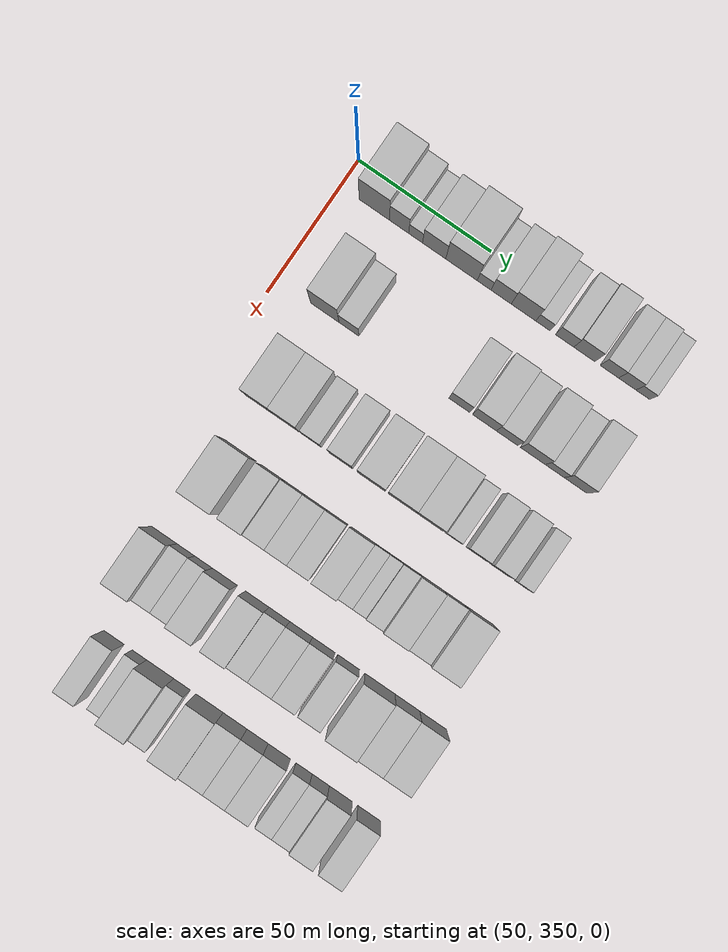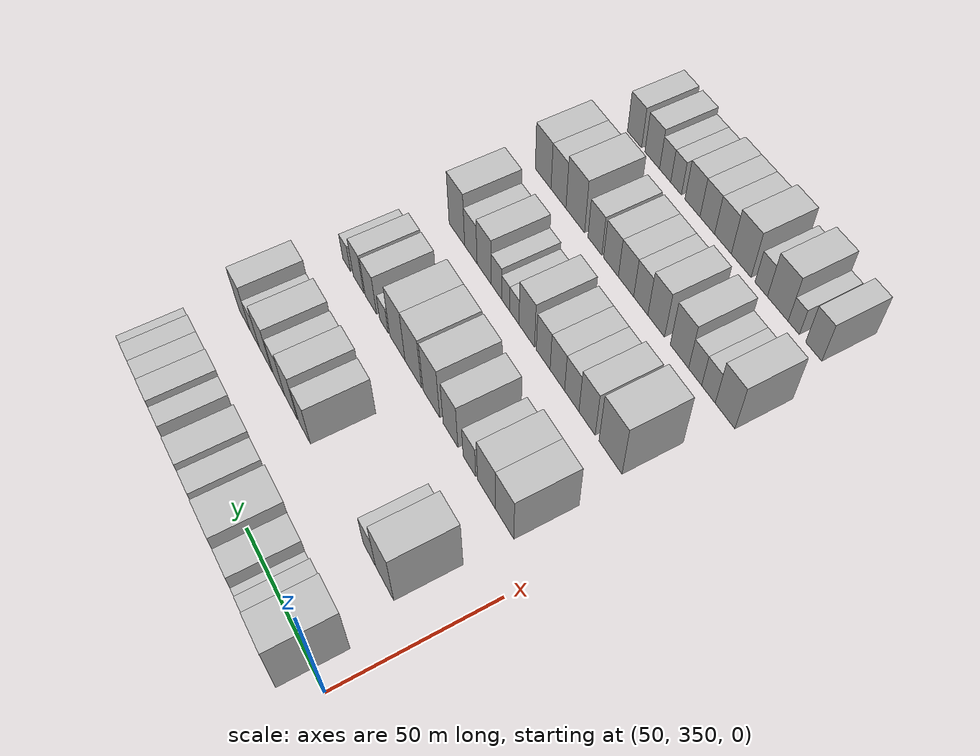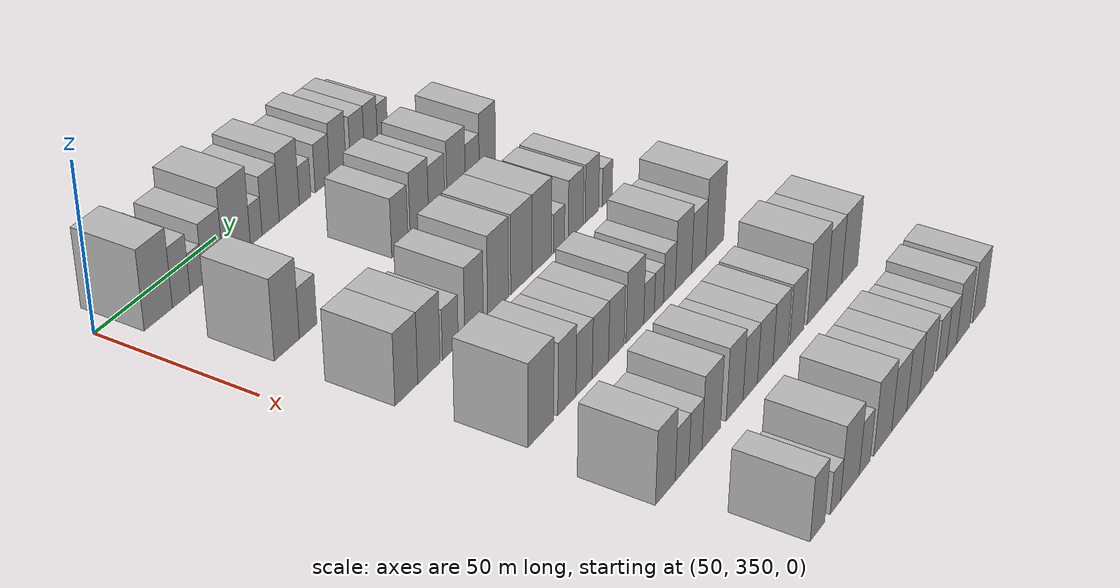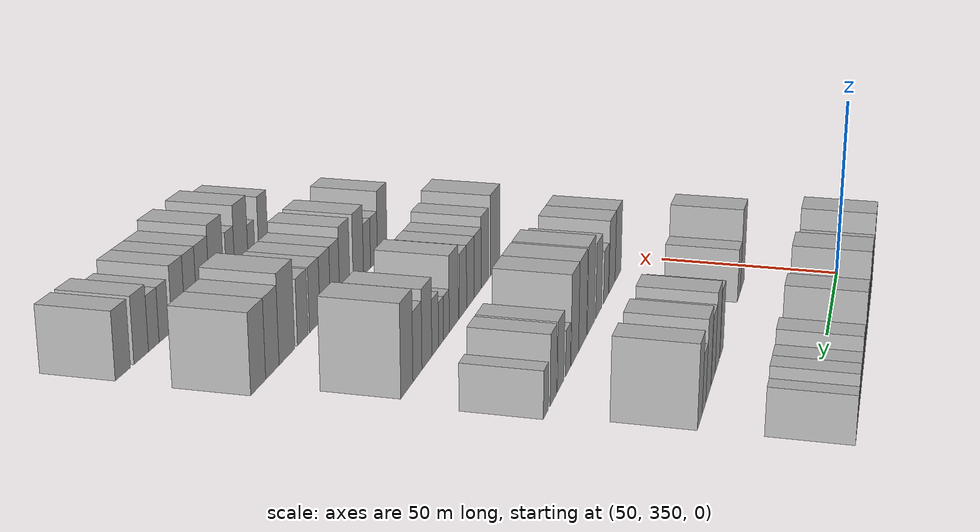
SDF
<sdf version="1.6">
 <world name="default">
  <model name="building_99">
   <static>1</static>
   <pose>50.0000 362.7256 0 0.000000 0.000000 0.000000</pose>
   <link name="link">
    <pose>0 0 12.00 0 0 0</pose>
    <collision name="collision"><geometry><box><size>20.0000 11.3812 24.0000</size></box></geometry></collision>
    <visual name="visual">
     <cast_shadows>0</cast_shadows>
     <geometry><box><size>20.0000 11.3812 24.0000</size></box></geometry>
     <material>
      <script>
       <uri>model://HANNAS_wall/materials/scripts</uri>
       <uri>model://HANNAS_wall/materials/textures</uri>
       <name>vrc/HANNAS_wall</name>
      </script>
     </material>
    </visual>
   </link>
  </model>
  <model name="building_100">
   <static>1</static>
   <pose>50.0000 372.0240 0 0.000000 0.000000 0.000000</pose>
   <link name="link">
    <pose>0 0 9.00 0 0 0</pose>
    <collision name="collision"><geometry><box><size>20.0000 7.2157 18.0000</size></box></geometry></collision>
    <visual name="visual">
     <cast_shadows>0</cast_shadows>
     <geometry><box><size>20.0000 7.2157 18.0000</size></box></geometry>
     <material>
      <script>
       <uri>model://HANNAS_wall/materials/scripts</uri>
       <uri>model://HANNAS_wall/materials/textures</uri>
       <name>vrc/HANNAS_wall</name>
      </script>
     </material>
    </visual>
   </link>
  </model>
  <model name="building_101">
   <static>1</static>
   <pose>50.0000 378.2402 0 0.000000 0.000000 0.000000</pose>
   <link name="link">
    <pose>0 0 6.00 0 0 0</pose>
    <collision name="collision"><geometry><box><size>20.0000 5.2165 12.0000</size></box></geometry></collision>
    <visual name="visual">
     <cast_shadows>0</cast_shadows>
     <geometry><box><size>20.0000 5.2165 12.0000</size></box></geometry>
     <material>
      <script>
       <uri>model://HANNAS_wall/materials/scripts</uri>
       <uri>model://HANNAS_wall/materials/textures</uri>
       <name>vrc/HANNAS_wall</name>
      </script>
     </material>
    </visual>
   </link>
  </model>
  <model name="building_102">
   <static>1</static>
   <pose>50.0000 385.2216 0 0.000000 0.000000 0.000000</pose>
   <link name="link">
    <pose>0 0 9.00 0 0 0</pose>
    <collision name="collision"><geometry><box><size>20.0000 8.7464 18.0000</size></box></geometry></collision>
    <visual name="visual">
     <cast_shadows>0</cast_shadows>
     <geometry><box><size>20.0000 8.7464 18.0000</size></box></geometry>
     <material>
      <script>
       <uri>model://HANNAS_wall/materials/scripts</uri>
       <uri>model://HANNAS_wall/materials/textures</uri>
       <name>vrc/HANNAS_wall</name>
      </script>
     </material>
    </visual>
   </link>
  </model>
  <model name="building_103">
   <static>1</static>
   <pose>50.0000 395.5257 0 0.000000 0.000000 0.000000</pose>
   <link name="link">
    <pose>0 0 12.00 0 0 0</pose>
    <collision name="collision"><geometry><box><size>20.0000 11.8618 24.0000</size></box></geometry></collision>
    <visual name="visual">
     <cast_shadows>0</cast_shadows>
     <geometry><box><size>20.0000 11.8618 24.0000</size></box></geometry>
     <material>
      <script>
       <uri>model://HANNAS_wall/materials/scripts</uri>
       <uri>model://HANNAS_wall/materials/textures</uri>
       <name>vrc/HANNAS_wall</name>
      </script>
     </material>
    </visual>
   </link>
  </model>
  <model name="building_104">
   <static>1</static>
   <pose>50.0000 404.0453 0 0.000000 0.000000 0.000000</pose>
   <link name="link">
    <pose>0 0 6.00 0 0 0</pose>
    <collision name="collision"><geometry><box><size>20.0000 5.1774 12.0000</size></box></geometry></collision>
    <visual name="visual">
     <cast_shadows>0</cast_shadows>
     <geometry><box><size>20.0000 5.1774 12.0000</size></box></geometry>
     <material>
      <script>
       <uri>model://HANNAS_wall/materials/scripts</uri>
       <uri>model://HANNAS_wall/materials/textures</uri>
       <name>vrc/HANNAS_wall</name>
      </script>
     </material>
    </visual>
   </link>
  </model>
  <model name="building_105">
   <static>1</static>
   <pose>50.0000 410.4576 0 0.000000 0.000000 0.000000</pose>
   <link name="link">
    <pose>0 0 9.00 0 0 0</pose>
    <collision name="collision"><geometry><box><size>20.0000 7.6471 18.0000</size></box></geometry></collision>
    <visual name="visual">
     <cast_shadows>0</cast_shadows>
     <geometry><box><size>20.0000 7.6471 18.0000</size></box></geometry>
     <material>
      <script>
       <uri>model://HANNAS_wall/materials/scripts</uri>
       <uri>model://HANNAS_wall/materials/textures</uri>
       <name>vrc/HANNAS_wall</name>
      </script>
     </material>
    </visual>
   </link>
  </model>
  <model name="building_106">
   <static>1</static>
   <pose>50.0000 418.8817 0 0.000000 0.000000 0.000000</pose>
   <link name="link">
    <pose>0 0 10.50 0 0 0</pose>
    <collision name="collision"><geometry><box><size>20.0000 9.2010 21.0000</size></box></geometry></collision>
    <visual name="visual">
     <cast_shadows>0</cast_shadows>
     <geometry><box><size>20.0000 9.2010 21.0000</size></box></geometry>
     <material>
      <script>
       <uri>model://HANNAS_wall/materials/scripts</uri>
       <uri>model://HANNAS_wall/materials/textures</uri>
       <name>vrc/HANNAS_wall</name>
      </script>
     </material>
    </visual>
   </link>
  </model>
  <model name="building_107">
   <static>1</static>
   <pose>50.0000 426.2056 0 0.000000 0.000000 0.000000</pose>
   <link name="link">
    <pose>0 0 6.00 0 0 0</pose>
    <collision name="collision"><geometry><box><size>20.0000 5.4469 12.0000</size></box></geometry></collision>
    <visual name="visual">
     <cast_shadows>0</cast_shadows>
     <geometry><box><size>20.0000 5.4469 12.0000</size></box></geometry>
     <material>
      <script>
       <uri>model://HANNAS_wall/materials/scripts</uri>
       <uri>model://HANNAS_wall/materials/textures</uri>
       <name>vrc/HANNAS_wall</name>
      </script>
     </material>
    </visual>
   </link>
  </model>
  <model name="building_108">
   <static>1</static>
   <pose>50.0000 434.3857 0 0.000000 0.000000 0.000000</pose>
   <link name="link">
    <pose>0 0 7.50 0 0 0</pose>
    <collision name="collision"><geometry><box><size>20.0000 6.9132 15.0000</size></box></geometry></collision>
    <visual name="visual">
     <cast_shadows>0</cast_shadows>
     <geometry><box><size>20.0000 6.9132 15.0000</size></box></geometry>
     <material>
      <script>
       <uri>model://HANNAS_wall/materials/scripts</uri>
       <uri>model://HANNAS_wall/materials/textures</uri>
       <name>vrc/HANNAS_wall</name>
      </script>
     </material>
    </visual>
   </link>
  </model>
  <model name="building_109">
   <static>1</static>
   <pose>50.0000 441.7940 0 0.000000 0.000000 0.000000</pose>
   <link name="link">
    <pose>0 0 9.00 0 0 0</pose>
    <collision name="collision"><geometry><box><size>20.0000 7.9033 18.0000</size></box></geometry></collision>
    <visual name="visual">
     <cast_shadows>0</cast_shadows>
     <geometry><box><size>20.0000 7.9033 18.0000</size></box></geometry>
     <material>
      <script>
       <uri>model://HANNAS_wall/materials/scripts</uri>
       <uri>model://HANNAS_wall/materials/textures</uri>
       <name>vrc/HANNAS_wall</name>
      </script>
     </material>
    </visual>
   </link>
  </model>
  <model name="building_110">
   <static>1</static>
   <pose>50.0000 451.2131 0 0.000000 0.000000 0.000000</pose>
   <link name="link">
    <pose>0 0 7.50 0 0 0</pose>
    <collision name="collision"><geometry><box><size>20.0000 6.9349 15.0000</size></box></geometry></collision>
    <visual name="visual">
     <cast_shadows>0</cast_shadows>
     <geometry><box><size>20.0000 6.9349 15.0000</size></box></geometry>
     <material>
      <script>
       <uri>model://HANNAS_wall/materials/scripts</uri>
       <uri>model://HANNAS_wall/materials/textures</uri>
       <name>vrc/HANNAS_wall</name>
      </script>
     </material>
    </visual>
   </link>
  </model>
  <model name="building_111">
   <static>1</static>
   <pose>50.0000 457.9496 0 0.000000 0.000000 0.000000</pose>
   <link name="link">
    <pose>0 0 7.50 0 0 0</pose>
    <collision name="collision"><geometry><box><size>20.0000 6.5381 15.0000</size></box></geometry></collision>
    <visual name="visual">
     <cast_shadows>0</cast_shadows>
     <geometry><box><size>20.0000 6.5381 15.0000</size></box></geometry>
     <material>
      <script>
       <uri>model://HANNAS_wall/materials/scripts</uri>
       <uri>model://HANNAS_wall/materials/textures</uri>
       <name>vrc/HANNAS_wall</name>
      </script>
     </material>
    </visual>
   </link>
  </model>
  <model name="building_112">
   <static>1</static>
   <pose>50.0000 463.8132 0 0.000000 0.000000 0.000000</pose>
   <link name="link">
    <pose>0 0 6.00 0 0 0</pose>
    <collision name="collision"><geometry><box><size>20.0000 5.1892 12.0000</size></box></geometry></collision>
    <visual name="visual">
     <cast_shadows>0</cast_shadows>
     <geometry><box><size>20.0000 5.1892 12.0000</size></box></geometry>
     <material>
      <script>
       <uri>model://HANNAS_wall/materials/scripts</uri>
       <uri>model://HANNAS_wall/materials/textures</uri>
       <name>vrc/HANNAS_wall</name>
      </script>
     </material>
    </visual>
   </link>
  </model>
  <model name="building_232">
   <static>1</static>
   <pose>85.0000 368.2807 0 0.000000 0.000000 0.000000</pose>
   <link name="link">
    <pose>0 0 12.00 0 0 0</pose>
    <collision name="collision"><geometry><box><size>20.0000 10.6157 24.0000</size></box></geometry></collision>
    <visual name="visual">
     <cast_shadows>0</cast_shadows>
     <geometry><box><size>20.0000 10.6157 24.0000</size></box></geometry>
     <material>
      <script>
       <uri>model://HANNAS_wall/materials/scripts</uri>
       <uri>model://HANNAS_wall/materials/textures</uri>
       <name>vrc/HANNAS_wall</name>
      </script>
     </material>
    </visual>
   </link>
  </model>
  <model name="building_233">
   <static>1</static>
   <pose>85.0000 377.3295 0 0.000000 0.000000 0.000000</pose>
   <link name="link">
    <pose>0 0 7.50 0 0 0</pose>
    <collision name="collision"><geometry><box><size>20.0000 7.4819 15.0000</size></box></geometry></collision>
    <visual name="visual">
     <cast_shadows>0</cast_shadows>
     <geometry><box><size>20.0000 7.4819 15.0000</size></box></geometry>
     <material>
      <script>
       <uri>model://HANNAS_wall/materials/scripts</uri>
       <uri>model://HANNAS_wall/materials/textures</uri>
       <name>vrc/HANNAS_wall</name>
      </script>
     </material>
    </visual>
   </link>
  </model>
  <model name="building_234">
   <static>1</static>
   <pose>85.0000 418.8511 0 0.000000 0.000000 0.000000</pose>
   <link name="link">
    <pose>0 0 9.00 0 0 0</pose>
    <collision name="collision"><geometry><box><size>20.0000 7.8538 18.0000</size></box></geometry></collision>
    <visual name="visual">
     <cast_shadows>0</cast_shadows>
     <geometry><box><size>20.0000 7.8538 18.0000</size></box></geometry>
     <material>
      <script>
       <uri>model://HANNAS_wall/materials/scripts</uri>
       <uri>model://HANNAS_wall/materials/textures</uri>
       <name>vrc/HANNAS_wall</name>
      </script>
     </material>
    </visual>
   </link>
  </model>
  <model name="building_235">
   <static>1</static>
   <pose>85.0000 428.2792 0 0.000000 0.000000 0.000000</pose>
   <link name="link">
    <pose>0 0 10.50 0 0 0</pose>
    <collision name="collision"><geometry><box><size>20.0000 9.0023 21.0000</size></box></geometry></collision>
    <visual name="visual">
     <cast_shadows>0</cast_shadows>
     <geometry><box><size>20.0000 9.0023 21.0000</size></box></geometry>
     <material>
      <script>
       <uri>model://HANNAS_wall/materials/scripts</uri>
       <uri>model://HANNAS_wall/materials/textures</uri>
       <name>vrc/HANNAS_wall</name>
      </script>
     </material>
    </visual>
   </link>
  </model>
  <model name="building_236">
   <static>1</static>
   <pose>85.0000 436.7944 0 0.000000 0.000000 0.000000</pose>
   <link name="link">
    <pose>0 0 9.00 0 0 0</pose>
    <collision name="collision"><geometry><box><size>20.0000 8.0281 18.0000</size></box></geometry></collision>
    <visual name="visual">
     <cast_shadows>0</cast_shadows>
     <geometry><box><size>20.0000 8.0281 18.0000</size></box></geometry>
     <material>
      <script>
       <uri>model://HANNAS_wall/materials/scripts</uri>
       <uri>model://HANNAS_wall/materials/textures</uri>
       <name>vrc/HANNAS_wall</name>
      </script>
     </material>
    </visual>
   </link>
  </model>
  <model name="building_237">
   <static>1</static>
   <pose>85.0000 446.4732 0 0.000000 0.000000 0.000000</pose>
   <link name="link">
    <pose>0 0 10.50 0 0 0</pose>
    <collision name="collision"><geometry><box><size>20.0000 9.3296 21.0000</size></box></geometry></collision>
    <visual name="visual">
     <cast_shadows>0</cast_shadows>
     <geometry><box><size>20.0000 9.3296 21.0000</size></box></geometry>
     <material>
      <script>
       <uri>model://HANNAS_wall/materials/scripts</uri>
       <uri>model://HANNAS_wall/materials/textures</uri>
       <name>vrc/HANNAS_wall</name>
      </script>
     </material>
    </visual>
   </link>
  </model>
  <model name="building_238">
   <static>1</static>
   <pose>85.0000 454.7021 0 0.000000 0.000000 0.000000</pose>
   <link name="link">
    <pose>0 0 7.50 0 0 0</pose>
    <collision name="collision"><geometry><box><size>20.0000 7.1281 15.0000</size></box></geometry></collision>
    <visual name="visual">
     <cast_shadows>0</cast_shadows>
     <geometry><box><size>20.0000 7.1281 15.0000</size></box></geometry>
     <material>
      <script>
       <uri>model://HANNAS_wall/materials/scripts</uri>
       <uri>model://HANNAS_wall/materials/textures</uri>
       <name>vrc/HANNAS_wall</name>
      </script>
     </material>
    </visual>
   </link>
  </model>
  <model name="building_239">
   <static>1</static>
   <pose>85.0000 462.5322 0 0.000000 0.000000 0.000000</pose>
   <link name="link">
    <pose>0 0 10.50 0 0 0</pose>
    <collision name="collision"><geometry><box><size>20.0000 8.5323 21.0000</size></box></geometry></collision>
    <visual name="visual">
     <cast_shadows>0</cast_shadows>
     <geometry><box><size>20.0000 8.5323 21.0000</size></box></geometry>
     <material>
      <script>
       <uri>model://HANNAS_wall/materials/scripts</uri>
       <uri>model://HANNAS_wall/materials/textures</uri>
       <name>vrc/HANNAS_wall</name>
      </script>
     </material>
    </visual>
   </link>
  </model>
  <model name="building_352">
   <static>1</static>
   <pose>120.0000 367.7478 0 0.000000 0.000000 0.000000</pose>
   <link name="link">
    <pose>0 0 10.50 0 0 0</pose>
    <collision name="collision"><geometry><box><size>20.0000 9.9799 21.0000</size></box></geometry></collision>
    <visual name="visual">
     <cast_shadows>0</cast_shadows>
     <geometry><box><size>20.0000 9.9799 21.0000</size></box></geometry>
     <material>
      <script>
       <uri>model://HANNAS_wall/materials/scripts</uri>
       <uri>model://HANNAS_wall/materials/textures</uri>
       <name>vrc/HANNAS_wall</name>
      </script>
     </material>
    </visual>
   </link>
  </model>
  <model name="building_353">
   <static>1</static>
   <pose>120.0000 377.7495 0 0.000000 0.000000 0.000000</pose>
   <link name="link">
    <pose>0 0 10.50 0 0 0</pose>
    <collision name="collision"><geometry><box><size>20.0000 10.0236 21.0000</size></box></geometry></collision>
    <visual name="visual">
     <cast_shadows>0</cast_shadows>
     <geometry><box><size>20.0000 10.0236 21.0000</size></box></geometry>
     <material>
      <script>
       <uri>model://HANNAS_wall/materials/scripts</uri>
       <uri>model://HANNAS_wall/materials/textures</uri>
       <name>vrc/HANNAS_wall</name>
      </script>
     </material>
    </visual>
   </link>
  </model>
  <model name="building_354">
   <static>1</static>
   <pose>120.0000 387.4186 0 0.000000 0.000000 0.000000</pose>
   <link name="link">
    <pose>0 0 7.50 0 0 0</pose>
    <collision name="collision"><geometry><box><size>20.0000 7.3145 15.0000</size></box></geometry></collision>
    <visual name="visual">
     <cast_shadows>0</cast_shadows>
     <geometry><box><size>20.0000 7.3145 15.0000</size></box></geometry>
     <material>
      <script>
       <uri>model://HANNAS_wall/materials/scripts</uri>
       <uri>model://HANNAS_wall/materials/textures</uri>
       <name>vrc/HANNAS_wall</name>
      </script>
     </material>
    </visual>
   </link>
  </model>
  <model name="building_355">
   <static>1</static>
   <pose>120.0000 398.4719 0 0.000000 0.000000 0.000000</pose>
   <link name="link">
    <pose>0 0 10.50 0 0 0</pose>
    <collision name="collision"><geometry><box><size>20.0000 8.7922 21.0000</size></box></geometry></collision>
    <visual name="visual">
     <cast_shadows>0</cast_shadows>
     <geometry><box><size>20.0000 8.7922 21.0000</size></box></geometry>
     <material>
      <script>
       <uri>model://HANNAS_wall/materials/scripts</uri>
       <uri>model://HANNAS_wall/materials/textures</uri>
       <name>vrc/HANNAS_wall</name>
      </script>
     </material>
    </visual>
   </link>
  </model>
  <model name="building_356">
   <static>1</static>
   <pose>120.0000 409.9845 0 0.000000 0.000000 0.000000</pose>
   <link name="link">
    <pose>0 0 12.00 0 0 0</pose>
    <collision name="collision"><geometry><box><size>20.0000 10.2330 24.0000</size></box></geometry></collision>
    <visual name="visual">
     <cast_shadows>0</cast_shadows>
     <geometry><box><size>20.0000 10.2330 24.0000</size></box></geometry>
     <material>
      <script>
       <uri>model://HANNAS_wall/materials/scripts</uri>
       <uri>model://HANNAS_wall/materials/textures</uri>
       <name>vrc/HANNAS_wall</name>
      </script>
     </material>
    </visual>
   </link>
  </model>
  <model name="building_357">
   <static>1</static>
   <pose>120.0000 421.3764 0 0.000000 0.000000 0.000000</pose>
   <link name="link">
    <pose>0 0 12.00 0 0 0</pose>
    <collision name="collision"><geometry><box><size>20.0000 10.5509 24.0000</size></box></geometry></collision>
    <visual name="visual">
     <cast_shadows>0</cast_shadows>
     <geometry><box><size>20.0000 10.5509 24.0000</size></box></geometry>
     <material>
      <script>
       <uri>model://HANNAS_wall/materials/scripts</uri>
       <uri>model://HANNAS_wall/materials/textures</uri>
       <name>vrc/HANNAS_wall</name>
      </script>
     </material>
    </visual>
   </link>
  </model>
  <model name="building_358">
   <static>1</static>
   <pose>120.0000 431.6572 0 0.000000 0.000000 0.000000</pose>
   <link name="link">
    <pose>0 0 12.00 0 0 0</pose>
    <collision name="collision"><geometry><box><size>20.0000 10.0106 24.0000</size></box></geometry></collision>
    <visual name="visual">
     <cast_shadows>0</cast_shadows>
     <geometry><box><size>20.0000 10.0106 24.0000</size></box></geometry>
     <material>
      <script>
       <uri>model://HANNAS_wall/materials/scripts</uri>
       <uri>model://HANNAS_wall/materials/textures</uri>
       <name>vrc/HANNAS_wall</name>
      </script>
     </material>
    </visual>
   </link>
  </model>
  <model name="building_359">
   <static>1</static>
   <pose>120.0000 440.5516 0 0.000000 0.000000 0.000000</pose>
   <link name="link">
    <pose>0 0 6.00 0 0 0</pose>
    <collision name="collision"><geometry><box><size>20.0000 5.7782 12.0000</size></box></geometry></collision>
    <visual name="visual">
     <cast_shadows>0</cast_shadows>
     <geometry><box><size>20.0000 5.7782 12.0000</size></box></geometry>
     <material>
      <script>
       <uri>model://HANNAS_wall/materials/scripts</uri>
       <uri>model://HANNAS_wall/materials/textures</uri>
       <name>vrc/HANNAS_wall</name>
      </script>
     </material>
    </visual>
   </link>
  </model>
  <model name="building_360">
   <static>1</static>
   <pose>120.0000 449.4152 0 0.000000 0.000000 0.000000</pose>
   <link name="link">
    <pose>0 0 9.00 0 0 0</pose>
    <collision name="collision"><geometry><box><size>20.0000 7.9490 18.0000</size></box></geometry></collision>
    <visual name="visual">
     <cast_shadows>0</cast_shadows>
     <geometry><box><size>20.0000 7.9490 18.0000</size></box></geometry>
     <material>
      <script>
       <uri>model://HANNAS_wall/materials/scripts</uri>
       <uri>model://HANNAS_wall/materials/textures</uri>
       <name>vrc/HANNAS_wall</name>
      </script>
     </material>
    </visual>
   </link>
  </model>
  <model name="building_361">
   <static>1</static>
   <pose>120.0000 458.0494 0 0.000000 0.000000 0.000000</pose>
   <link name="link">
    <pose>0 0 9.00 0 0 0</pose>
    <collision name="collision"><geometry><box><size>20.0000 7.3192 18.0000</size></box></geometry></collision>
    <visual name="visual">
     <cast_shadows>0</cast_shadows>
     <geometry><box><size>20.0000 7.3192 18.0000</size></box></geometry>
     <material>
      <script>
       <uri>model://HANNAS_wall/materials/scripts</uri>
       <uri>model://HANNAS_wall/materials/textures</uri>
       <name>vrc/HANNAS_wall</name>
      </script>
     </material>
    </visual>
   </link>
  </model>
  <model name="building_362">
   <static>1</static>
   <pose>120.0000 466.4621 0 0.000000 0.000000 0.000000</pose>
   <link name="link">
    <pose>0 0 6.00 0 0 0</pose>
    <collision name="collision"><geometry><box><size>20.0000 5.5063 12.0000</size></box></geometry></collision>
    <visual name="visual">
     <cast_shadows>0</cast_shadows>
     <geometry><box><size>20.0000 5.5063 12.0000</size></box></geometry>
     <material>
      <script>
       <uri>model://HANNAS_wall/materials/scripts</uri>
       <uri>model://HANNAS_wall/materials/textures</uri>
       <name>vrc/HANNAS_wall</name>
      </script>
     </material>
    </visual>
   </link>
  </model>
  <model name="building_473">
   <static>1</static>
   <pose>155.0000 370.9724 0 0.000000 0.000000 0.000000</pose>
   <link name="link">
    <pose>0 0 12.00 0 0 0</pose>
    <collision name="collision"><geometry><box><size>20.0000 11.8762 24.0000</size></box></geometry></collision>
    <visual name="visual">
     <cast_shadows>0</cast_shadows>
     <geometry><box><size>20.0000 11.8762 24.0000</size></box></geometry>
     <material>
      <script>
       <uri>model://HANNAS_wall/materials/scripts</uri>
       <uri>model://HANNAS_wall/materials/textures</uri>
       <name>vrc/HANNAS_wall</name>
      </script>
     </material>
    </visual>
   </link>
  </model>
  <model name="building_474">
   <static>1</static>
   <pose>155.0000 383.2444 0 0.000000 0.000000 0.000000</pose>
   <link name="link">
    <pose>0 0 10.50 0 0 0</pose>
    <collision name="collision"><geometry><box><size>20.0000 8.6679 21.0000</size></box></geometry></collision>
    <visual name="visual">
     <cast_shadows>0</cast_shadows>
     <geometry><box><size>20.0000 8.6679 21.0000</size></box></geometry>
     <material>
      <script>
       <uri>model://HANNAS_wall/materials/scripts</uri>
       <uri>model://HANNAS_wall/materials/textures</uri>
       <name>vrc/HANNAS_wall</name>
      </script>
     </material>
    </visual>
   </link>
  </model>
  <model name="building_475">
   <static>1</static>
   <pose>155.0000 391.5191 0 0.000000 0.000000 0.000000</pose>
   <link name="link">
    <pose>0 0 9.00 0 0 0</pose>
    <collision name="collision"><geometry><box><size>20.0000 7.8816 18.0000</size></box></geometry></collision>
    <visual name="visual">
     <cast_shadows>0</cast_shadows>
     <geometry><box><size>20.0000 7.8816 18.0000</size></box></geometry>
     <material>
      <script>
       <uri>model://HANNAS_wall/materials/scripts</uri>
       <uri>model://HANNAS_wall/materials/textures</uri>
       <name>vrc/HANNAS_wall</name>
      </script>
     </material>
    </visual>
   </link>
  </model>
  <model name="building_476">
   <static>1</static>
   <pose>155.0000 399.5139 0 0.000000 0.000000 0.000000</pose>
   <link name="link">
    <pose>0 0 9.00 0 0 0</pose>
    <collision name="collision"><geometry><box><size>20.0000 8.1080 18.0000</size></box></geometry></collision>
    <visual name="visual">
     <cast_shadows>0</cast_shadows>
     <geometry><box><size>20.0000 8.1080 18.0000</size></box></geometry>
     <material>
      <script>
       <uri>model://HANNAS_wall/materials/scripts</uri>
       <uri>model://HANNAS_wall/materials/textures</uri>
       <name>vrc/HANNAS_wall</name>
      </script>
     </material>
    </visual>
   </link>
  </model>
  <model name="building_477">
   <static>1</static>
   <pose>155.0000 407.5145 0 0.000000 0.000000 0.000000</pose>
   <link name="link">
    <pose>0 0 9.00 0 0 0</pose>
    <collision name="collision"><geometry><box><size>20.0000 7.8932 18.0000</size></box></geometry></collision>
    <visual name="visual">
     <cast_shadows>0</cast_shadows>
     <geometry><box><size>20.0000 7.8932 18.0000</size></box></geometry>
     <material>
      <script>
       <uri>model://HANNAS_wall/materials/scripts</uri>
       <uri>model://HANNAS_wall/materials/textures</uri>
       <name>vrc/HANNAS_wall</name>
      </script>
     </material>
    </visual>
   </link>
  </model>
  <model name="building_478">
   <static>1</static>
   <pose>155.0000 417.0420 0 0.000000 0.000000 0.000000</pose>
   <link name="link">
    <pose>0 0 10.50 0 0 0</pose>
    <collision name="collision"><geometry><box><size>20.0000 9.1618 21.0000</size></box></geometry></collision>
    <visual name="visual">
     <cast_shadows>0</cast_shadows>
     <geometry><box><size>20.0000 9.1618 21.0000</size></box></geometry>
     <material>
      <script>
       <uri>model://HANNAS_wall/materials/scripts</uri>
       <uri>model://HANNAS_wall/materials/textures</uri>
       <name>vrc/HANNAS_wall</name>
      </script>
     </material>
    </visual>
   </link>
  </model>
  <model name="building_479">
   <static>1</static>
   <pose>155.0000 424.4192 0 0.000000 0.000000 0.000000</pose>
   <link name="link">
    <pose>0 0 6.00 0 0 0</pose>
    <collision name="collision"><geometry><box><size>20.0000 5.5928 12.0000</size></box></geometry></collision>
    <visual name="visual">
     <cast_shadows>0</cast_shadows>
     <geometry><box><size>20.0000 5.5928 12.0000</size></box></geometry>
     <material>
      <script>
       <uri>model://HANNAS_wall/materials/scripts</uri>
       <uri>model://HANNAS_wall/materials/textures</uri>
       <name>vrc/HANNAS_wall</name>
      </script>
     </material>
    </visual>
   </link>
  </model>
  <model name="building_480">
   <static>1</static>
   <pose>155.0000 429.6668 0 0.000000 0.000000 0.000000</pose>
   <link name="link">
    <pose>0 0 6.00 0 0 0</pose>
    <collision name="collision"><geometry><box><size>20.0000 4.9024 12.0000</size></box></geometry></collision>
    <visual name="visual">
     <cast_shadows>0</cast_shadows>
     <geometry><box><size>20.0000 4.9024 12.0000</size></box></geometry>
     <material>
      <script>
       <uri>model://HANNAS_wall/materials/scripts</uri>
       <uri>model://HANNAS_wall/materials/textures</uri>
       <name>vrc/HANNAS_wall</name>
      </script>
     </material>
    </visual>
   </link>
  </model>
  <model name="building_481">
   <static>1</static>
   <pose>155.0000 435.2991 0 0.000000 0.000000 0.000000</pose>
   <link name="link">
    <pose>0 0 7.50 0 0 0</pose>
    <collision name="collision"><geometry><box><size>20.0000 6.3622 15.0000</size></box></geometry></collision>
    <visual name="visual">
     <cast_shadows>0</cast_shadows>
     <geometry><box><size>20.0000 6.3622 15.0000</size></box></geometry>
     <material>
      <script>
       <uri>model://HANNAS_wall/materials/scripts</uri>
       <uri>model://HANNAS_wall/materials/textures</uri>
       <name>vrc/HANNAS_wall</name>
      </script>
     </material>
    </visual>
   </link>
  </model>
  <model name="building_482">
   <static>1</static>
   <pose>155.0000 442.9984 0 0.000000 0.000000 0.000000</pose>
   <link name="link">
    <pose>0 0 10.50 0 0 0</pose>
    <collision name="collision"><geometry><box><size>20.0000 9.0364 21.0000</size></box></geometry></collision>
    <visual name="visual">
     <cast_shadows>0</cast_shadows>
     <geometry><box><size>20.0000 9.0364 21.0000</size></box></geometry>
     <material>
      <script>
       <uri>model://HANNAS_wall/materials/scripts</uri>
       <uri>model://HANNAS_wall/materials/textures</uri>
       <name>vrc/HANNAS_wall</name>
      </script>
     </material>
    </visual>
   </link>
  </model>
  <model name="building_483">
   <static>1</static>
   <pose>155.0000 451.5203 0 0.000000 0.000000 0.000000</pose>
   <link name="link">
    <pose>0 0 9.00 0 0 0</pose>
    <collision name="collision"><geometry><box><size>20.0000 8.0074 18.0000</size></box></geometry></collision>
    <visual name="visual">
     <cast_shadows>0</cast_shadows>
     <geometry><box><size>20.0000 8.0074 18.0000</size></box></geometry>
     <material>
      <script>
       <uri>model://HANNAS_wall/materials/scripts</uri>
       <uri>model://HANNAS_wall/materials/textures</uri>
       <name>vrc/HANNAS_wall</name>
      </script>
     </material>
    </visual>
   </link>
  </model>
  <model name="building_484">
   <static>1</static>
   <pose>155.0000 460.6753 0 0.000000 0.000000 0.000000</pose>
   <link name="link">
    <pose>0 0 12.00 0 0 0</pose>
    <collision name="collision"><geometry><box><size>20.0000 10.3026 24.0000</size></box></geometry></collision>
    <visual name="visual">
     <cast_shadows>0</cast_shadows>
     <geometry><box><size>20.0000 10.3026 24.0000</size></box></geometry>
     <material>
      <script>
       <uri>model://HANNAS_wall/materials/scripts</uri>
       <uri>model://HANNAS_wall/materials/textures</uri>
       <name>vrc/HANNAS_wall</name>
      </script>
     </material>
    </visual>
   </link>
  </model>
  <model name="building_598">
   <static>1</static>
   <pose>190.0000 366.3879 0 0.000000 0.000000 0.000000</pose>
   <link name="link">
    <pose>0 0 10.50 0 0 0</pose>
    <collision name="collision"><geometry><box><size>20.0000 9.5464 21.0000</size></box></geometry></collision>
    <visual name="visual">
     <cast_shadows>0</cast_shadows>
     <geometry><box><size>20.0000 9.5464 21.0000</size></box></geometry>
     <material>
      <script>
       <uri>model://HANNAS_wall/materials/scripts</uri>
       <uri>model://HANNAS_wall/materials/textures</uri>
       <name>vrc/HANNAS_wall</name>
      </script>
     </material>
    </visual>
   </link>
  </model>
  <model name="building_599">
   <static>1</static>
   <pose>190.0000 374.5249 0 0.000000 0.000000 0.000000</pose>
   <link name="link">
    <pose>0 0 7.50 0 0 0</pose>
    <collision name="collision"><geometry><box><size>20.0000 6.7276 15.0000</size></box></geometry></collision>
    <visual name="visual">
     <cast_shadows>0</cast_shadows>
     <geometry><box><size>20.0000 6.7276 15.0000</size></box></geometry>
     <material>
      <script>
       <uri>model://HANNAS_wall/materials/scripts</uri>
       <uri>model://HANNAS_wall/materials/textures</uri>
       <name>vrc/HANNAS_wall</name>
      </script>
     </material>
    </visual>
   </link>
  </model>
  <model name="building_600">
   <static>1</static>
   <pose>190.0000 381.1868 0 0.000000 0.000000 0.000000</pose>
   <link name="link">
    <pose>0 0 7.50 0 0 0</pose>
    <collision name="collision"><geometry><box><size>20.0000 6.5963 15.0000</size></box></geometry></collision>
    <visual name="visual">
     <cast_shadows>0</cast_shadows>
     <geometry><box><size>20.0000 6.5963 15.0000</size></box></geometry>
     <material>
      <script>
       <uri>model://HANNAS_wall/materials/scripts</uri>
       <uri>model://HANNAS_wall/materials/textures</uri>
       <name>vrc/HANNAS_wall</name>
      </script>
     </material>
    </visual>
   </link>
  </model>
  <model name="building_601">
   <static>1</static>
   <pose>190.0000 389.2220 0 0.000000 0.000000 0.000000</pose>
   <link name="link">
    <pose>0 0 10.50 0 0 0</pose>
    <collision name="collision"><geometry><box><size>20.0000 9.4742 21.0000</size></box></geometry></collision>
    <visual name="visual">
     <cast_shadows>0</cast_shadows>
     <geometry><box><size>20.0000 9.4742 21.0000</size></box></geometry>
     <material>
      <script>
       <uri>model://HANNAS_wall/materials/scripts</uri>
       <uri>model://HANNAS_wall/materials/textures</uri>
       <name>vrc/HANNAS_wall</name>
      </script>
     </material>
    </visual>
   </link>
  </model>
  <model name="building_602">
   <static>1</static>
   <pose>190.0000 401.4230 0 0.000000 0.000000 0.000000</pose>
   <link name="link">
    <pose>0 0 10.50 0 0 0</pose>
    <collision name="collision"><geometry><box><size>20.0000 8.9279 21.0000</size></box></geometry></collision>
    <visual name="visual">
     <cast_shadows>0</cast_shadows>
     <geometry><box><size>20.0000 8.9279 21.0000</size></box></geometry>
     <material>
      <script>
       <uri>model://HANNAS_wall/materials/scripts</uri>
       <uri>model://HANNAS_wall/materials/textures</uri>
       <name>vrc/HANNAS_wall</name>
      </script>
     </material>
    </visual>
   </link>
  </model>
  <model name="building_603">
   <static>1</static>
   <pose>190.0000 409.7720 0 0.000000 0.000000 0.000000</pose>
   <link name="link">
    <pose>0 0 9.00 0 0 0</pose>
    <collision name="collision"><geometry><box><size>20.0000 7.7702 18.0000</size></box></geometry></collision>
    <visual name="visual">
     <cast_shadows>0</cast_shadows>
     <geometry><box><size>20.0000 7.7702 18.0000</size></box></geometry>
     <material>
      <script>
       <uri>model://HANNAS_wall/materials/scripts</uri>
       <uri>model://HANNAS_wall/materials/textures</uri>
       <name>vrc/HANNAS_wall</name>
      </script>
     </material>
    </visual>
   </link>
  </model>
  <model name="building_604">
   <static>1</static>
   <pose>190.0000 417.9468 0 0.000000 0.000000 0.000000</pose>
   <link name="link">
    <pose>0 0 9.00 0 0 0</pose>
    <collision name="collision"><geometry><box><size>20.0000 8.5794 18.0000</size></box></geometry></collision>
    <visual name="visual">
     <cast_shadows>0</cast_shadows>
     <geometry><box><size>20.0000 8.5794 18.0000</size></box></geometry>
     <material>
      <script>
       <uri>model://HANNAS_wall/materials/scripts</uri>
       <uri>model://HANNAS_wall/materials/textures</uri>
       <name>vrc/HANNAS_wall</name>
      </script>
     </material>
    </visual>
   </link>
  </model>
  <model name="building_605">
   <static>1</static>
   <pose>190.0000 426.4611 0 0.000000 0.000000 0.000000</pose>
   <link name="link">
    <pose>0 0 9.00 0 0 0</pose>
    <collision name="collision"><geometry><box><size>20.0000 8.4490 18.0000</size></box></geometry></collision>
    <visual name="visual">
     <cast_shadows>0</cast_shadows>
     <geometry><box><size>20.0000 8.4490 18.0000</size></box></geometry>
     <material>
      <script>
       <uri>model://HANNAS_wall/materials/scripts</uri>
       <uri>model://HANNAS_wall/materials/textures</uri>
       <name>vrc/HANNAS_wall</name>
      </script>
     </material>
    </visual>
   </link>
  </model>
  <model name="building_606">
   <static>1</static>
   <pose>190.0000 435.7761 0 0.000000 0.000000 0.000000</pose>
   <link name="link">
    <pose>0 0 9.00 0 0 0</pose>
    <collision name="collision"><geometry><box><size>20.0000 8.1810 18.0000</size></box></geometry></collision>
    <visual name="visual">
     <cast_shadows>0</cast_shadows>
     <geometry><box><size>20.0000 8.1810 18.0000</size></box></geometry>
     <material>
      <script>
       <uri>model://HANNAS_wall/materials/scripts</uri>
       <uri>model://HANNAS_wall/materials/textures</uri>
       <name>vrc/HANNAS_wall</name>
      </script>
     </material>
    </visual>
   </link>
  </model>
  <model name="building_607">
   <static>1</static>
   <pose>190.0000 447.5270 0 0.000000 0.000000 0.000000</pose>
   <link name="link">
    <pose>0 0 12.00 0 0 0</pose>
    <collision name="collision"><geometry><box><size>20.0000 11.3210 24.0000</size></box></geometry></collision>
    <visual name="visual">
     <cast_shadows>0</cast_shadows>
     <geometry><box><size>20.0000 11.3210 24.0000</size></box></geometry>
     <material>
      <script>
       <uri>model://HANNAS_wall/materials/scripts</uri>
       <uri>model://HANNAS_wall/materials/textures</uri>
       <name>vrc/HANNAS_wall</name>
      </script>
     </material>
    </visual>
   </link>
  </model>
  <model name="building_608">
   <static>1</static>
   <pose>190.0000 457.8367 0 0.000000 0.000000 0.000000</pose>
   <link name="link">
    <pose>0 0 10.50 0 0 0</pose>
    <collision name="collision"><geometry><box><size>20.0000 9.2985 21.0000</size></box></geometry></collision>
    <visual name="visual">
     <cast_shadows>0</cast_shadows>
     <geometry><box><size>20.0000 9.2985 21.0000</size></box></geometry>
     <material>
      <script>
       <uri>model://HANNAS_wall/materials/scripts</uri>
       <uri>model://HANNAS_wall/materials/textures</uri>
       <name>vrc/HANNAS_wall</name>
      </script>
     </material>
    </visual>
   </link>
  </model>
  <model name="building_609">
   <static>1</static>
   <pose>190.0000 467.4947 0 0.000000 0.000000 0.000000</pose>
   <link name="link">
    <pose>0 0 10.50 0 0 0</pose>
    <collision name="collision"><geometry><box><size>20.0000 10.0175 21.0000</size></box></geometry></collision>
    <visual name="visual">
     <cast_shadows>0</cast_shadows>
     <geometry><box><size>20.0000 10.0175 21.0000</size></box></geometry>
     <material>
      <script>
       <uri>model://HANNAS_wall/materials/scripts</uri>
       <uri>model://HANNAS_wall/materials/textures</uri>
       <name>vrc/HANNAS_wall</name>
      </script>
     </material>
    </visual>
   </link>
  </model>
  <model name="building_730">
   <static>1</static>
   <pose>225.0000 371.5548 0 0.000000 0.000000 0.000000</pose>
   <link name="link">
    <pose>0 0 9.00 0 0 0</pose>
    <collision name="collision"><geometry><box><size>20.0000 7.6439 18.0000</size></box></geometry></collision>
    <visual name="visual">
     <cast_shadows>0</cast_shadows>
     <geometry><box><size>20.0000 7.6439 18.0000</size></box></geometry>
     <material>
      <script>
       <uri>model://HANNAS_wall/materials/scripts</uri>
       <uri>model://HANNAS_wall/materials/textures</uri>
       <name>vrc/HANNAS_wall</name>
      </script>
     </material>
    </visual>
   </link>
  </model>
  <model name="building_731">
   <static>1</static>
   <pose>225.0000 381.1005 0 0.000000 0.000000 0.000000</pose>
   <link name="link">
    <pose>0 0 6.00 0 0 0</pose>
    <collision name="collision"><geometry><box><size>20.0000 5.4475 12.0000</size></box></geometry></collision>
    <visual name="visual">
     <cast_shadows>0</cast_shadows>
     <geometry><box><size>20.0000 5.4475 12.0000</size></box></geometry>
     <material>
      <script>
       <uri>model://HANNAS_wall/materials/scripts</uri>
       <uri>model://HANNAS_wall/materials/textures</uri>
       <name>vrc/HANNAS_wall</name>
      </script>
     </material>
    </visual>
   </link>
  </model>
  <model name="building_732">
   <static>1</static>
   <pose>225.0000 388.9594 0 0.000000 0.000000 0.000000</pose>
   <link name="link">
    <pose>0 0 10.50 0 0 0</pose>
    <collision name="collision"><geometry><box><size>20.0000 10.2704 21.0000</size></box></geometry></collision>
    <visual name="visual">
     <cast_shadows>0</cast_shadows>
     <geometry><box><size>20.0000 10.2704 21.0000</size></box></geometry>
     <material>
      <script>
       <uri>model://HANNAS_wall/materials/scripts</uri>
       <uri>model://HANNAS_wall/materials/textures</uri>
       <name>vrc/HANNAS_wall</name>
      </script>
     </material>
    </visual>
   </link>
  </model>
  <model name="building_733">
   <static>1</static>
   <pose>225.0000 397.2274 0 0.000000 0.000000 0.000000</pose>
   <link name="link">
    <pose>0 0 7.50 0 0 0</pose>
    <collision name="collision"><geometry><box><size>20.0000 6.2656 15.0000</size></box></geometry></collision>
    <visual name="visual">
     <cast_shadows>0</cast_shadows>
     <geometry><box><size>20.0000 6.2656 15.0000</size></box></geometry>
     <material>
      <script>
       <uri>model://HANNAS_wall/materials/scripts</uri>
       <uri>model://HANNAS_wall/materials/textures</uri>
       <name>vrc/HANNAS_wall</name>
      </script>
     </material>
    </visual>
   </link>
  </model>
  <model name="building_734">
   <static>1</static>
   <pose>225.0000 407.5257 0 0.000000 0.000000 0.000000</pose>
   <link name="link">
    <pose>0 0 10.50 0 0 0</pose>
    <collision name="collision"><geometry><box><size>20.0000 10.3311 21.0000</size></box></geometry></collision>
    <visual name="visual">
     <cast_shadows>0</cast_shadows>
     <geometry><box><size>20.0000 10.3311 21.0000</size></box></geometry>
     <material>
      <script>
       <uri>model://HANNAS_wall/materials/scripts</uri>
       <uri>model://HANNAS_wall/materials/textures</uri>
       <name>vrc/HANNAS_wall</name>
      </script>
     </material>
    </visual>
   </link>
  </model>
  <model name="building_735">
   <static>1</static>
   <pose>225.0000 417.1664 0 0.000000 0.000000 0.000000</pose>
   <link name="link">
    <pose>0 0 9.00 0 0 0</pose>
    <collision name="collision"><geometry><box><size>20.0000 8.9503 18.0000</size></box></geometry></collision>
    <visual name="visual">
     <cast_shadows>0</cast_shadows>
     <geometry><box><size>20.0000 8.9503 18.0000</size></box></geometry>
     <material>
      <script>
       <uri>model://HANNAS_wall/materials/scripts</uri>
       <uri>model://HANNAS_wall/materials/textures</uri>
       <name>vrc/HANNAS_wall</name>
      </script>
     </material>
    </visual>
   </link>
  </model>
  <model name="building_736">
   <static>1</static>
   <pose>225.0000 425.6266 0 0.000000 0.000000 0.000000</pose>
   <link name="link">
    <pose>0 0 9.00 0 0 0</pose>
    <collision name="collision"><geometry><box><size>20.0000 7.9700 18.0000</size></box></geometry></collision>
    <visual name="visual">
     <cast_shadows>0</cast_shadows>
     <geometry><box><size>20.0000 7.9700 18.0000</size></box></geometry>
     <material>
      <script>
       <uri>model://HANNAS_wall/materials/scripts</uri>
       <uri>model://HANNAS_wall/materials/textures</uri>
       <name>vrc/HANNAS_wall</name>
      </script>
     </material>
    </visual>
   </link>
  </model>
  <model name="building_737">
   <static>1</static>
   <pose>225.0000 433.8200 0 0.000000 0.000000 0.000000</pose>
   <link name="link">
    <pose>0 0 9.00 0 0 0</pose>
    <collision name="collision"><geometry><box><size>20.0000 8.4169 18.0000</size></box></geometry></collision>
    <visual name="visual">
     <cast_shadows>0</cast_shadows>
     <geometry><box><size>20.0000 8.4169 18.0000</size></box></geometry>
     <material>
      <script>
       <uri>model://HANNAS_wall/materials/scripts</uri>
       <uri>model://HANNAS_wall/materials/textures</uri>
       <name>vrc/HANNAS_wall</name>
      </script>
     </material>
    </visual>
   </link>
  </model>
  <model name="building_738">
   <static>1</static>
   <pose>225.0000 443.0904 0 0.000000 0.000000 0.000000</pose>
   <link name="link">
    <pose>0 0 7.50 0 0 0</pose>
    <collision name="collision"><geometry><box><size>20.0000 6.1238 15.0000</size></box></geometry></collision>
    <visual name="visual">
     <cast_shadows>0</cast_shadows>
     <geometry><box><size>20.0000 6.1238 15.0000</size></box></geometry>
     <material>
      <script>
       <uri>model://HANNAS_wall/materials/scripts</uri>
       <uri>model://HANNAS_wall/materials/textures</uri>
       <name>vrc/HANNAS_wall</name>
      </script>
     </material>
    </visual>
   </link>
  </model>
  <model name="building_739">
   <static>1</static>
   <pose>225.0000 449.3910 0 0.000000 0.000000 0.000000</pose>
   <link name="link">
    <pose>0 0 7.50 0 0 0</pose>
    <collision name="collision"><geometry><box><size>20.0000 6.4773 15.0000</size></box></geometry></collision>
    <visual name="visual">
     <cast_shadows>0</cast_shadows>
     <geometry><box><size>20.0000 6.4773 15.0000</size></box></geometry>
     <material>
      <script>
       <uri>model://HANNAS_wall/materials/scripts</uri>
       <uri>model://HANNAS_wall/materials/textures</uri>
       <name>vrc/HANNAS_wall</name>
      </script>
     </material>
    </visual>
   </link>
  </model>
  <model name="building_740">
   <static>1</static>
   <pose>225.0000 456.9591 0 0.000000 0.000000 0.000000</pose>
   <link name="link">
    <pose>0 0 9.00 0 0 0</pose>
    <collision name="collision"><geometry><box><size>20.0000 8.6591 18.0000</size></box></geometry></collision>
    <visual name="visual">
     <cast_shadows>0</cast_shadows>
     <geometry><box><size>20.0000 8.6591 18.0000</size></box></geometry>
     <material>
      <script>
       <uri>model://HANNAS_wall/materials/scripts</uri>
       <uri>model://HANNAS_wall/materials/textures</uri>
       <name>vrc/HANNAS_wall</name>
      </script>
     </material>
    </visual>
   </link>
  </model>
  <model name="building_741">
   <static>1</static>
   <pose>225.0000 467.5848 0 0.000000 0.000000 0.000000</pose>
   <link name="link">
    <pose>0 0 9.00 0 0 0</pose>
    <collision name="collision"><geometry><box><size>20.0000 8.5923 18.0000</size></box></geometry></collision>
    <visual name="visual">
     <cast_shadows>0</cast_shadows>
     <geometry><box><size>20.0000 8.5923 18.0000</size></box></geometry>
     <material>
      <script>
       <uri>model://HANNAS_wall/materials/scripts</uri>
       <uri>model://HANNAS_wall/materials/textures</uri>
       <name>vrc/HANNAS_wall</name>
      </script>
     </material>
    </visual>
   </link>
  </model>
 </world>
</sdf>
